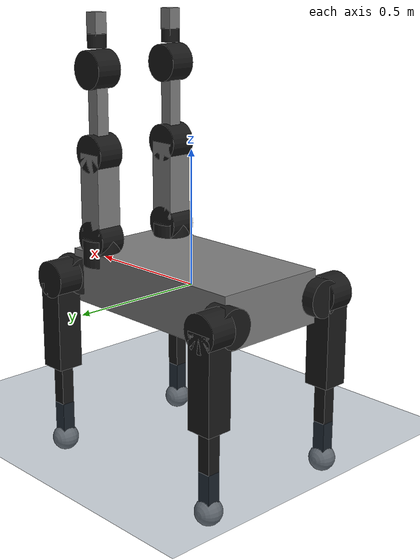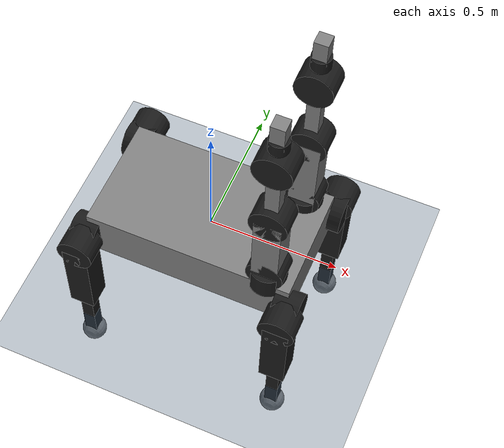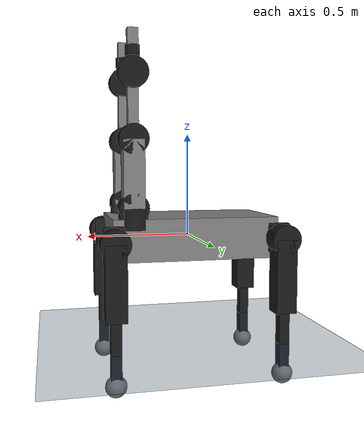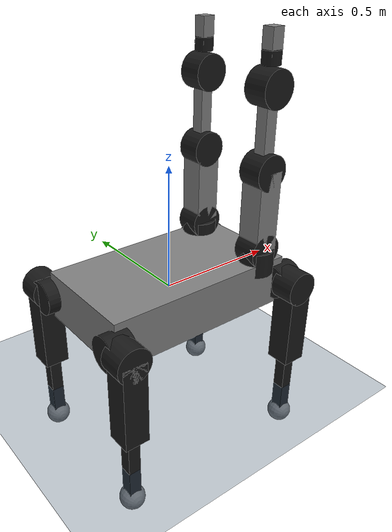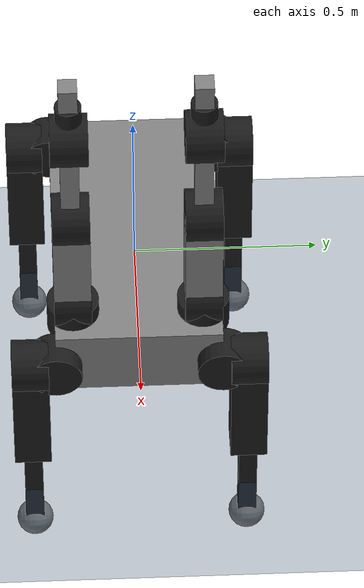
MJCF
<?xml version="1.0" encoding="UTF-8"?>
<mujoco>
  <include file="../scene.xml" />
  <include file="kyon_body.xml" />
  <actuator>
    <position name="shoulder_yaw_1" joint="shoulder_yaw_1" ctrlrange="-3.312 3.312" />
    <position name="shoulder_pitch_1" joint="shoulder_pitch_1" ctrlrange="-2.4056 2.4056" />
    <position name="elbow_pitch_1" joint="elbow_pitch_1" ctrlrange="-2.4056 2.4056" />
    <position name="wrist_pitch_1" joint="wrist_pitch_1" ctrlrange="-2.4056 2.4056" />
    <position name="wrist_yaw_1" joint="wrist_yaw_1" ctrlrange="-2.4056 2.4056" />
    <position name="shoulder_yaw_2" joint="shoulder_yaw_2" ctrlrange="-3.3458 3.3458" />
    <position name="shoulder_pitch_2" joint="shoulder_pitch_2" ctrlrange="-2.3266 2.3266" />
    <position name="elbow_pitch_2" joint="elbow_pitch_2" ctrlrange="-2.3266 2.3266" />
    <position name="wrist_pitch_2" joint="wrist_pitch_2" ctrlrange="-2.3266 2.3266" />
    <position name="wrist_yaw_2" joint="wrist_yaw_2" ctrlrange="-2.3266 2.3266" />
    <position name="hip_roll_1" joint="hip_roll_1" ctrlrange="-2.03 2.51" />
    <position name="hip_pitch_1" joint="hip_pitch_1" ctrlrange="-2.4056 2.4056" />
    <position name="knee_pitch_1" joint="knee_pitch_1" ctrlrange="-2.4056 2.4056" />
    <position name="hip_roll_2" joint="hip_roll_2" ctrlrange="-2.51 2.03" />
    <position name="hip_pitch_2" joint="hip_pitch_2" ctrlrange="-2.3266 2.3266" />
    <position name="knee_pitch_2" joint="knee_pitch_2" ctrlrange="-2.3266 2.3266" />
    <position name="hip_roll_3" joint="hip_roll_3" ctrlrange="-2.51 2.03" />
    <position name="hip_pitch_3" joint="hip_pitch_3" ctrlrange="-2.4696 2.4696" />
    <position name="knee_pitch_3" joint="knee_pitch_3" ctrlrange="-2.4696 2.4696" />
    <position name="hip_roll_4" joint="hip_roll_4" ctrlrange="-2.03 2.51" />
    <position name="hip_pitch_4" joint="hip_pitch_4" ctrlrange="-2.3426 2.3426" />
    <position name="knee_pitch_4" joint="knee_pitch_4" ctrlrange="-2.3426 2.3426" />
  </actuator>
</mujoco>

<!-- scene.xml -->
<!--
    @author siddharth deore
    @email siddharth.deore@iit.it
-->
<mujoco model="scene">
  <visual>
    <headlight diffuse="0.6 0.6 0.6" ambient="0.3 0.3 0.3" specular="0 0 0" />
    <rgba haze="0.15 0.25 0.35 1" />
    <global azimuth="120" elevation="-20" />
  </visual>
  <asset>
    <texture type="skybox" builtin="gradient" rgb1="0.3 0.5 0.7" rgb2="0 0 0" width="512" height="3072" />
    <texture type="2d" name="groundplane" builtin="checker" mark="edge" rgb1="0.2 0.3 0.4" rgb2="0.1 0.2 0.3" markrgb="0.8 0.8 0.8" width="300" height="300" />
    <material name="groundplane" texture="groundplane" texuniform="true" texrepeat="5 5" reflectance="0.2" />
  </asset>
  <worldbody>
    <light pos="0 0 1.5" dir="0 0 -1" directional="true" />
    <geom name="floor" type="plane" conaffinity="1" condim="3" contype="1" material="groundplane" pos="0 0 -0.5" size="0 0 1" />
  </worldbody>
</mujoco>

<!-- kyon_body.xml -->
<!--
    Kyon MJCF
    @author siddharth deore
    @email siddharth.deore@iit.it
-->
<mujoco model="kyon">
  <compiler angle="radian" autolimits="true" />
  <option cone="elliptic" impratio="100" />
  <default>
    <joint damping="50" armature="0.01" frictionloss="0.2" />
    <position kp="1000" forcerange="-150.5 150.5" />
  </default>
  <statistic meansize="0.177182" extent="1.68124" center="0 0 0.140619" />
  <worldbody>
    <body name="pelvis">
      <inertial pos="0 0 0" quat="0 0.707107 0 0.707107" mass="14" diaginertia="0.982917 0.793333 0.282917" />
      <joint name="reference" type="free" damping="0" frictionloss="0" />
      <geom size="0.4 0.225 0.1" type="box" />
      <body name="shoulder_yaw_motor_1" pos="0.3 0.175 0.1">
        <inertial pos="0 0 0.0166667" quat="0.707107 0 0 0.707107" mass="2.4" diaginertia="0.005187 0.00487367 0.00390067" />
        <joint name="shoulder_yaw_1" pos="0 0 0" axis="0 0 1" range="-3.312 3.312" />
        <geom size="0.07 0.05" type="cylinder" rgba="0.1 0.1 0.1 1" />
        <geom size="0.07 0.05" pos="0 0 0.05" quat="0.707107 -0.707107 0 0" type="cylinder" rgba="0.1 0.1 0.1 1" />
        <body name="lower_arm_1" pos="0 0 0.05" quat="0.5 -0.5 -0.5 -0.5">
          <inertial pos="0.231111 0 0" quat="0 0.707107 0 0.707107" mass="1.8" diaginertia="0.0227044 0.0223911 0.00331333" />
          <joint name="shoulder_pitch_1" pos="0 0 0" axis="0 0 1" range="-2.4056 2.4056" />
          <geom size="0.16 0.05 0.05" pos="0.16 0 0" type="box" />
          <geom size="0.07 0.05" pos="0.32 0 0" type="cylinder" rgba="0.1 0.1 0.1 1" />
          <body name="upper_arm1_1" pos="0.32 0 0">
            <inertial pos="0.2175 0 0" quat="0 0.707107 0 0.707107" mass="1.4" diaginertia="0.0152752 0.0150284 0.00161758" />
            <joint name="elbow_pitch_1" pos="0 0 0" axis="0 0 1" range="-2.4056 2.4056" />
            <geom size="0.15 0.025 0.025" pos="0.16 0 0" type="box" />
            <geom size="0.07 0.05" pos="0.3 0 0" type="cylinder" rgba="0.1 0.1 0.1 1" />
            <body name="upper_arm2_1" pos="0.3 0 0">
              <inertial pos="0.05 0 0" quat="0.5 0.5 0.5 0.5" mass="2" diaginertia="0.00208333 0.00208333 0.000833333" />
              <joint name="wrist_pitch_1" pos="0 0 0" axis="0 0 1" range="-2.4056 2.4056" />
              <geom size="0.05 0.025 0.025" pos="0.15 0 0" type="box" />
              <body name="wrist_1" pos="0.1 0 0" quat="0.707107 0 0.707107 0">
                <inertial pos="0 0 0" quat="0.5 0.5 -0.5 0.5" mass="0.63" diaginertia="0.0015435 0.00129675 0.00129675" />
                <joint name="wrist_yaw_1" pos="0 0 0" axis="0 0 1" range="-2.4056 2.4056" />
                <geom size="0.035 0.025" type="cylinder" rgba="0.1 0.1 0.1 1" />
              </body>
            </body>
          </body>
        </body>
      </body>
      <body name="shoulder_yaw_motor_2" pos="0.3 -0.175 0.1">
        <inertial pos="0 0 0.0166667" quat="0.707107 0 0 0.707107" mass="2.4" diaginertia="0.005187 0.00487367 0.00390067" />
        <joint name="shoulder_yaw_2" pos="0 0 0" axis="0 0 1" range="-3.3458 3.3458" />
        <geom size="0.07 0.05" type="cylinder" rgba="0.1 0.1 0.1 1" />
        <geom size="0.07 0.05" pos="0 0 0.05" quat="0.707107 -0.707107 0 0" type="cylinder" rgba="0.1 0.1 0.1 1" />
        <body name="lower_arm_2" pos="0 0 0.05" quat="0.5 -0.5 -0.5 -0.5">
          <inertial pos="0.231111 0 0" quat="0 0.707107 0 0.707107" mass="1.8" diaginertia="0.0227044 0.0223911 0.00331333" />
          <joint name="shoulder_pitch_2" pos="0 0 0" axis="0 0 1" range="-2.3266 2.3266" />
          <geom size="0.16 0.05 0.05" pos="0.16 0 0" type="box" />
          <geom size="0.07 0.05" pos="0.32 0 0" type="cylinder" rgba="0.1 0.1 0.1 1" />
          <body name="upper_arm1_2" pos="0.32 0 0">
            <inertial pos="0.2175 0 0" quat="0 0.707107 0 0.707107" mass="1.4" diaginertia="0.0152752 0.0150284 0.00161758" />
            <joint name="elbow_pitch_2" pos="0 0 0" axis="0 0 1" range="-2.3266 2.3266" />
            <geom size="0.15 0.025 0.025" pos="0.16 0 0" type="box" />
            <geom size="0.07 0.05" pos="0.3 0 0" type="cylinder" rgba="0.1 0.1 0.1 1" />
            <body name="upper_arm2_2" pos="0.3 0 0">
              <inertial pos="0.05 0 0" quat="0.5 0.5 0.5 0.5" mass="2" diaginertia="0.00208333 0.00208333 0.000833333" />
              <joint name="wrist_pitch_2" pos="0 0 0" axis="0 0 1" range="-2.3266 2.3266" />
              <geom size="0.05 0.025 0.025" pos="0.15 0 0" type="box" />
              <body name="wrist_2" pos="0.1 0 0" quat="0.707107 0 0.707107 0">
                <inertial pos="0 0 0" quat="0.5 0.5 -0.5 0.5" mass="0.63" diaginertia="0.0015435 0.00129675 0.00129675" />
                <joint name="wrist_yaw_2" pos="0 0 0" axis="0 0 1" range="-2.3266 2.3266" />
                <geom size="0.035 0.025" type="cylinder" rgba="0.1 0.1 0.1 1" />
              </body>
            </body>
          </body>
        </body>
      </body>
      <body name="hip_roll_motor_1" pos="0.4 0.225 0" quat="0.707107 0 0.707107 0">
        <inertial pos="0 0.0466667 0" quat="0.5 0.5 -0.5 0.5" mass="5.4" diaginertia="0.0119213 0.011561 0.00640167" />
        <joint name="hip_roll_1" pos="0 0 0" axis="0 0 1" range="-2.03 2.51" />
        <geom size="0.07 0.05" type="cylinder" rgba="0.1 0.1 0.1 1" />
        <geom size="0.07 0.05" pos="0 0.07 0" quat="0.707107 -0.707107 0 0" type="cylinder" rgba="0.1 0.1 0.1 1" />
        <geom size="0.07 0.05" pos="0 0.07 0" quat="0.707107 -0.707107 0 0" type="cylinder" rgba="0.1 0.1 0.1 1" />
        <body name="upper_leg_1" pos="0 0.07 0" quat="0.707107 -0.707107 0 0">
          <inertial pos="0.175 0 0" quat="0.5 0.5 0.5 0.5" mass="2" diaginertia="0.0220833 0.0220833 0.00333333" />
          <joint name="hip_pitch_1" pos="0 0 0" axis="0 0 1" range="-2.4056 2.4056" />
          <geom size="0.175 0.05 0.05" pos="0.175 0 0" type="box" rgba="0.1 0.1 0.1 1" />
          <body name="lower_leg_1" pos="0.35 0 0">
            <inertial pos="0.163636 0 0" quat="0.5 0.5 0.5 0.5" mass="1.1" diaginertia="0.00992045 0.00992045 0.000583333" />
            <joint name="knee_pitch_1" pos="0 0 0" axis="0 0 1" range="-2.4056 2.4056" />
            <geom size="0.15 0.025 0.025" pos="0.15 0 0" type="box" rgba="0.1 0.1 0.1 1" />
            <geom size="0.05" pos="0.3 0 0" />
          </body>
        </body>
      </body>
      <body name="hip_roll_motor_2" pos="0.4 -0.225 0" quat="0.707107 0 0.707107 0">
        <inertial pos="0 -0.0466667 0" quat="0.5 0.5 -0.5 0.5" mass="5.4" diaginertia="0.0119213 0.011561 0.00640167" />
        <joint name="hip_roll_2" pos="0 0 0" axis="0 0 1" range="-2.51 2.03" />
        <geom size="0.07 0.05" type="cylinder" rgba="0.1 0.1 0.1 1" />
        <geom size="0.07 0.05" pos="0 -0.07 0" quat="0.707107 -0.707107 0 0" type="cylinder" rgba="0.1 0.1 0.1 1" />
        <geom size="0.07 0.05" pos="0 -0.07 0" quat="0.707107 -0.707107 0 0" type="cylinder" rgba="0.1 0.1 0.1 1" />
        <body name="upper_leg_2" pos="0 -0.07 0" quat="0.707107 -0.707107 0 0">
          <inertial pos="0.175 0 0" quat="0.5 0.5 0.5 0.5" mass="2" diaginertia="0.0220833 0.0220833 0.00333333" />
          <joint name="hip_pitch_2" pos="0 0 0" axis="0 0 1" range="-2.3266 2.3266" />
          <geom size="0.175 0.05 0.05" pos="0.175 0 0" type="box" rgba="0.1 0.1 0.1 1" />
          <body name="lower_leg_2" pos="0.35 0 0">
            <inertial pos="0.163636 0 0" quat="0.5 0.5 0.5 0.5" mass="1.1" diaginertia="0.00992045 0.00992045 0.000583333" />
            <joint name="knee_pitch_2" pos="0 0 0" axis="0 0 1" range="-2.3266 2.3266" />
            <geom size="0.15 0.025 0.025" pos="0.15 0 0" type="box" rgba="0.1 0.1 0.1 1" />
            <geom size="0.05" pos="0.3 0 0" />
          </body>
        </body>
      </body>
      <body name="hip_roll_motor_3" pos="-0.4 0.225 0" quat="0.707107 0 0.707107 0">
        <inertial pos="0 0.0466667 0" quat="0.5 0.5 -0.5 0.5" mass="5.4" diaginertia="0.0119213 0.011561 0.00640167" />
        <joint name="hip_roll_3" pos="0 0 0" axis="0 0 1" range="-2.51 2.03" />
        <geom size="0.07 0.05" type="cylinder" rgba="0.1 0.1 0.1 1" />
        <geom size="0.07 0.05" pos="0 0.07 0" quat="0.707107 -0.707107 0 0" type="cylinder" rgba="0.1 0.1 0.1 1" />
        <geom size="0.07 0.05" pos="0 0.07 0" quat="0.707107 -0.707107 0 0" type="cylinder" rgba="0.1 0.1 0.1 1" />
        <body name="upper_leg_3" pos="0 0.07 0" quat="0.707107 -0.707107 0 0">
          <inertial pos="0.175 0 0" quat="0.5 0.5 0.5 0.5" mass="2" diaginertia="0.0220833 0.0220833 0.00333333" />
          <joint name="hip_pitch_3" pos="0 0 0" axis="0 0 1" range="-2.4696 2.4696" />
          <geom size="0.175 0.05 0.05" pos="0.175 0 0" type="box" rgba="0.1 0.1 0.1 1" />
          <body name="lower_leg_3" pos="0.35 0 0">
            <inertial pos="0.163636 0 0" quat="0.5 0.5 0.5 0.5" mass="1.1" diaginertia="0.00992045 0.00992045 0.000583333" />
            <joint name="knee_pitch_3" pos="0 0 0" axis="0 0 1" range="-2.4696 2.4696" />
            <geom size="0.15 0.025 0.025" pos="0.15 0 0" type="box" rgba="0.1 0.1 0.1 1" />
            <geom size="0.05" pos="0.3 0 0" />
          </body>
        </body>
      </body>
      <body name="hip_roll_motor_4" pos="-0.4 -0.225 0" quat="0.707107 0 0.707107 0">
        <inertial pos="0 -0.0466667 0" quat="0.5 0.5 -0.5 0.5" mass="5.4" diaginertia="0.0119213 0.011561 0.00640167" />
        <joint name="hip_roll_4" pos="0 0 0" axis="0 0 1" range="-2.03 2.51" />
        <geom size="0.07 0.05" type="cylinder" rgba="0.1 0.1 0.1 1" />
        <geom size="0.07 0.05" pos="0 -0.07 0" quat="0.707107 -0.707107 0 0" type="cylinder" rgba="0.1 0.1 0.1 1" />
        <geom size="0.07 0.05" pos="0 -0.07 0" quat="0.707107 -0.707107 0 0" type="cylinder" rgba="0.1 0.1 0.1 1" />
        <body name="upper_leg_4" pos="0 -0.07 0" quat="0.707107 -0.707107 0 0">
          <inertial pos="0.175 0 0" quat="0.5 0.5 0.5 0.5" mass="2" diaginertia="0.0220833 0.0220833 0.00333333" />
          <joint name="hip_pitch_4" pos="0 0 0" axis="0 0 1" range="-2.3426 2.3426" />
          <geom size="0.175 0.05 0.05" pos="0.175 0 0" type="box" rgba="0.1 0.1 0.1 1" />
          <body name="lower_leg_4" pos="0.35 0 0">
            <inertial pos="0.163636 0 0" quat="0.5 0.5 0.5 0.5" mass="1.1" diaginertia="0.00992045 0.00992045 0.000583333" />
            <joint name="knee_pitch_4" pos="0 0 0" axis="0 0 1" range="-2.3426 2.3426" />
            <geom size="0.15 0.025 0.025" pos="0.15 0 0" type="box" rgba="0.1 0.1 0.1 1" />
            <geom size="0.05" pos="0.3 0 0" />
          </body>
        </body>
      </body>
    </body>
  </worldbody>
  <contact>
    <exclude body1="shoulder_yaw_motor_1" body2="hip_roll_motor_1" />
    <exclude body1="shoulder_yaw_motor_2" body2="hip_roll_motor_2" />
    <exclude body1="pelvis" body2="upper_leg_1" />
    <exclude body1="pelvis" body2="upper_leg_2" />
    <exclude body1="pelvis" body2="upper_leg_3" />
    <exclude body1="pelvis" body2="upper_leg_4" />
  </contact>
  <keyframe>
    <key qpos="0 0 -0.027 1 0 0 0 0 -1.4 2.4 0.7 0 0 -1.4 2.4 0.7 0 0 0.55 -1.1 0 0.55 -1.1 0 0.55 -1.1 0 0.55 -1.1" />
</keyframe>
</mujoco>
